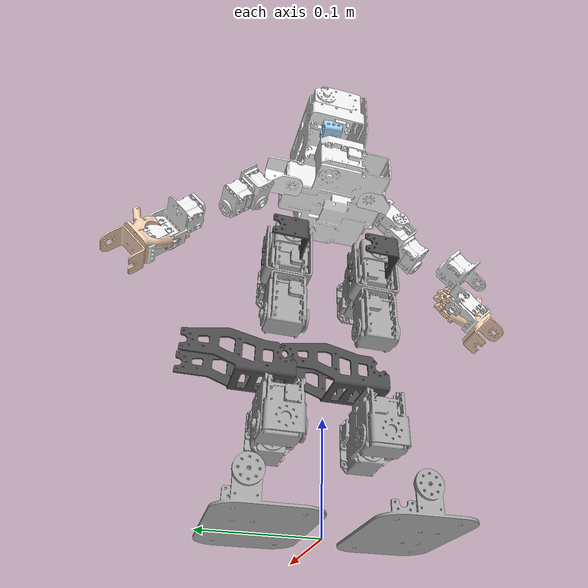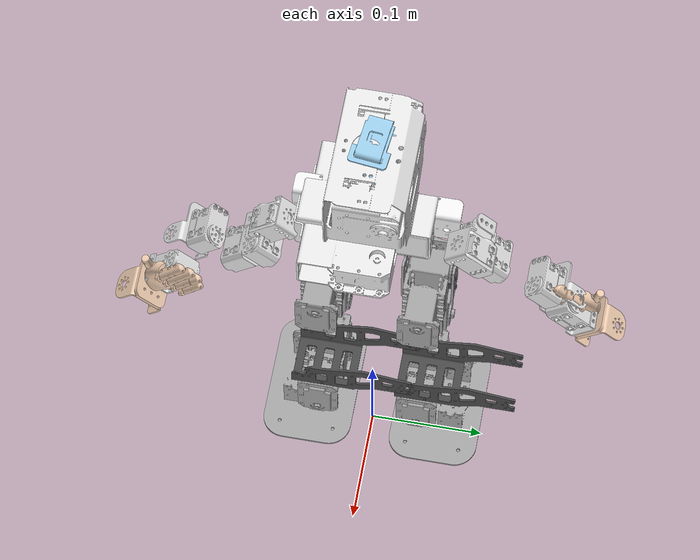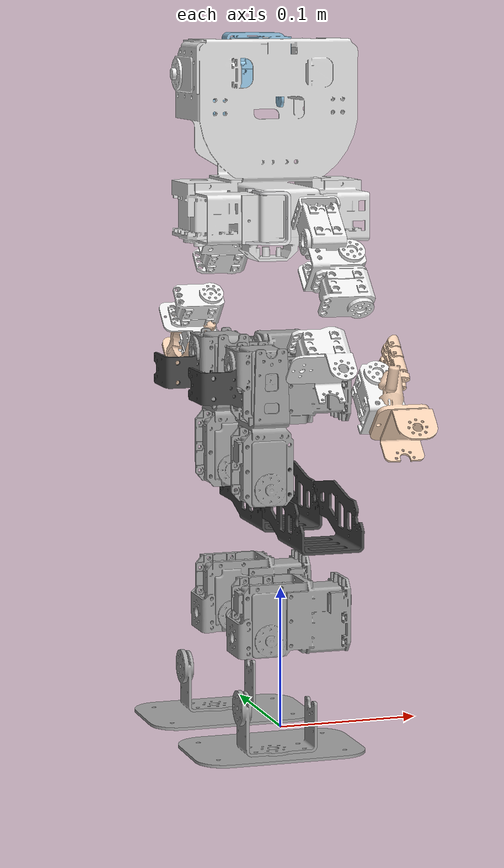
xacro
<?xml version="1.0"?>
<robot xmlns:xacro="http://www.ros.org/wiki/xacro" name="alfan_2025">
    <xacro:arg name="initial_positions_file" default="initial_positions.yaml" />

    <!-- Import alfan_2025 urdf file -->
    <xacro:include filename="$(find alfan_robot_description)/urdf/alfan.urdf" />

    <!-- Import control_xacro -->
    <xacro:include filename="alfan_2025.ros2_control.xacro" />

    <xacro:alfan_2025_ros2_control name="GazeboROS2" initial_positions_file="$(arg initial_positions_file)"/>

    <gazebo>
        <plugin filename="ign_ros2_control-system" name="ign_ros2_control::IgnitionROS2ControlPlugin">
            <parameters>$(find alfan_moveit_config)/config/ros2_controllers.yaml</parameters>
        </plugin>
    </gazebo>

</robot>

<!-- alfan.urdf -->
<!-- Generated using onshape-to-robot -->
<!-- Onshape https://cad.onshape.com/documents/8cbf7271d634c29c967e8abb/w/69ee037ca6e75b04c62f3a0c/e/52ef5a2e9e2916901e209032 -->
<robot name="alfan_2025">
  <!-- Dummy base link -->
  <link name="base_link"></link>

  <!-- Link body -->
  <link name="body">
    <inertial>
      <origin xyz="0.000411267 0.0353498 0.302557" rpy="0 0 0"/>
      <mass value="0.776"/>
      <inertia ixx="0.00203499" ixy="-1.25756e-06" ixz="9.38892e-06" iyy="0.00237683" iyz="0.000151309" izz="0.00128127"/>
    </inertial>
    <!-- Part body -->
    <collision>
      <origin xyz="-1.31293e-05 0.0322451 0.34124" rpy="5.10735e-16 2.03322e-15 5.27298e-13"/>
      <geometry>
        <box size="0.113618 0.0647698 0.097"/>
      </geometry>
    </collision>
    <collision>
      <origin xyz="2.31657e-05 0.0394829 0.270436" rpy="1.5708 1.07144e-09 -3.14159"/>
      <geometry>
        <box size="0.124589 0.0459933 0.113"/>
      </geometry>
    </collision>
    <visual>
      <origin xyz="3.47065e-06 0.0114153 0.38874" rpy="1.15071e-09 -1.07144e-09 5.27298e-13"/>
      <geometry>
        <mesh filename="file://$(find alfan_robot_description)/meshes/body.stl"/>
      </geometry>
      <material name="body_material">
        <color rgba="0.917647 0.917647 0.917647 1"/>
      </material>
    </visual>
  </link>
  <!-- Link hip_connector -->
  <link name="hip_connector">
    <inertial>
      <origin xyz="-0.00277951 3.46945e-18 0.00995004" rpy="0 0 0"/>
      <mass value="0.0123061"/>
      <inertia ixx="1.85406e-06" ixy="8.00236e-46" ixz="-3.24987e-09" iyy="6.40402e-06" iyz="3.03674e-49" izz="5.65319e-06"/>
    </inertial>
    <!-- Part hip_connector -->
    <collision>
      <origin xyz="-0.00275466 4.61869e-07 0.01715" rpy="-3.14159 1.70298e-32 3.14159"/>
      <geometry>
        <box size="0.0505652 0.0271414 0.0343"/>
      </geometry>
    </collision>
    <visual>
      <origin xyz="-0.0249111 0.0104111 0" rpy="-1.5708 -1.70298e-32 -1.75665e-40"/>
      <geometry>
        <mesh filename="file://$(find alfan_robot_description)/meshes/hip_connector.stl"/>
      </geometry>
      <material name="hip_connector_material">
        <color rgba="0.286275 0.286275 0.286275 1"/>
      </material>
    </visual>
  </link>
  <!-- Link r_hip_mx28_block -->
  <link name="r_hip_mx28_block">
    <inertial>
      <origin xyz="-1.37558e-05 -0.011279 0.00311794" rpy="0 0 0"/>
      <mass value="0.172"/>
      <inertia ixx="0.000124355" ixy="-3.24882e-07" ixz="4.71379e-08" iyy="0.000111307" iyz="-2.61935e-06" izz="4.76915e-05"/>
    </inertial>
    <!-- Part r_hip_mx28_block -->
    <collision>
      <origin xyz="0.00126368 -0.0135 0.00370412" rpy="-1.5708 1.57028 6.01977e-28"/>
      <geometry>
        <box size="0.086166 0.0433161 0.051"/>
      </geometry>
    </collision>
    <visual>
      <origin xyz="0.000712109 0.012 0.02305" rpy="-1.5708 1.57028 6.01977e-28"/>
      <geometry>
        <mesh filename="file://$(find alfan_robot_description)/meshes/r_hip_mx28_block.stl"/>
      </geometry>
      <material name="r_hip_mx28_block_material">
        <color rgba="0.647059 0.647059 0.647059 1"/>
      </material>
    </visual>
  </link>
  <!-- Link r_hip_to_knee -->
  <link name="r_hip_to_knee">
    <inertial>
      <origin xyz="1.98623e-05 -0.07614 -0.0205254" rpy="0 0 0"/>
      <mass value="0.1"/>
      <inertia ixx="5.82381e-05" ixy="-4.39709e-08" ixz="-4.88036e-11" iyy="2.07531e-05" iyz="3.32361e-07" izz="4.99882e-05"/>
    </inertial>
    <!-- Part r_hip_to_knee -->
    <collision>
      <origin xyz="7.98659e-06 -0.0518372 -0.0203764" rpy="1.5708 -0.000512983 6.25151e-12"/>
      <geometry>
        <box size="0.0357519 0.0454254 0.108"/>
      </geometry>
    </collision>
    <visual>
      <origin xyz="1.04083e-17 -0.0494982 -0.0205" rpy="-1.5708 -0.000512983 3.94431e-31"/>
      <geometry>
        <mesh filename="file://$(find alfan_robot_description)/meshes/r_hip_to_knee.stl"/>
      </geometry>
      <material name="r_hip_to_knee_material">
        <color rgba="0.647059 0.647059 0.647059 1"/>
      </material>
    </visual>
  </link>
  <!-- Link tibia -->
  <link name="tibia">
    <inertial>
      <origin xyz="0.0358486 -0.00695074 -0.0205" rpy="0 0 0"/>
      <mass value="0.0331521"/>
      <inertia ixx="1.77691e-05" ixy="-5.4342e-06" ixz="-1.7794e-11" iyy="3.96731e-05" iyz="-1.99428e-11" izz="3.15344e-05"/>
    </inertial>
    <!-- Part tibia -->
    <collision>
      <origin xyz="0.042763 -0.00188569 -0.0205" rpy="-3.95075e-22 7.29933e-24 -1.70683e-31"/>
      <geometry>
        <box size="0.105526 0.0398408 0.045"/>
      </geometry>
    </collision>
    <visual>
      <origin xyz="-0.01 -0.0217982 -0.0399111" rpy="-3.14159 -8.07435e-17 -1.70683e-31"/>
      <geometry>
        <mesh filename="file://$(find alfan_robot_description)/meshes/tibia.stl"/>
      </geometry>
      <material name="tibia_material">
        <color rgba="0.286275 0.286275 0.286275 1"/>
      </material>
    </visual>
  </link>
  <!-- Link r_ankle_mx28_block -->
  <link name="r_ankle_mx28_block">
    <inertial>
      <origin xyz="0.0202313 0.0113587 -0.0199638" rpy="0 0 0"/>
      <mass value="0.171"/>
      <inertia ixx="4.75178e-05" ixy="-2.04125e-06" ixz="-4.79159e-08" iyy="0.000109219" iyz="3.25089e-07" izz="0.000122128"/>
    </inertial>
    <!-- Part r_ankle_mx28_block -->
    <collision>
      <origin xyz="0.0203326 0.0135 -0.0186868" rpy="1.5708 -0.000512983 -2.95823e-31"/>
      <geometry>
        <box size="0.0840214 0.0432827 0.051"/>
      </geometry>
    </collision>
    <visual>
      <origin xyz="0 0.033 -0.01995" rpy="-1.5708 -0.000512983 -2.95823e-31"/>
      <geometry>
        <mesh filename="file://$(find alfan_robot_description)/meshes/r_ankle_mx28_block.stl"/>
      </geometry>
      <material name="r_ankle_mx28_block_material">
        <color rgba="0.647059 0.647059 0.647059 1"/>
      </material>
    </visual>
  </link>
  <!-- Link r_foot -->
  <link name="r_foot">
    <inertial>
      <origin xyz="-0.00958302 -0.028072 0.0273224" rpy="0 0 0"/>
      <mass value="0.068074"/>
      <inertia ixx="7.24657e-05" ixy="-3.0832e-06" ixz="-1.35193e-06" iyy="9.321e-05" iyz="-3.97153e-06" izz="3.59097e-05"/>
    </inertial>
    <!-- Part r_foot -->
    <collision>
      <origin xyz="1.08572e-05 -0.00989888 0.027" rpy="3.14159 -1.28014e-10 -1.69082e-13"/>
      <geometry>
        <box size="0.0272329 0.0438661 0.054"/>
      </geometry>
    </collision>
    <collision>
      <origin xyz="-0.0129381 -0.0327982 0.0252954" rpy="-1.5708 1.57028 1.063e-25"/>
      <geometry>
        <box size="0.120686 0.080481 0.01"/>
      </geometry>
    </collision>
    <visual>
      <origin xyz="-0.0130455 -0.0317982 0.02525" rpy="-1.5708 1.57028 1.063e-25"/>
      <geometry>
        <mesh filename="file://$(find alfan_robot_description)/meshes/r_foot.stl"/>
      </geometry>
      <material name="r_foot_material">
        <color rgba="0.647059 0.647059 0.647059 1"/>
      </material>
    </visual>
  </link>
  <!-- Joint from r_ankle_mx28_block to r_foot -->
  <joint name="r_ankle_roll" type="revolute">
    <origin xyz="0.02305 -2.60209e-15 -0.01995" rpy="-7.45549e-13 -1.5708 0"/>
    <parent link="r_ankle_mx28_block"/>
    <child link="r_foot"/>
    <axis xyz="0 0 1"/>
    <limit effort="2.5" velocity="10.0" lower="-0.3491" upper="0.3491"/>
  </joint>
  <!-- Joint from tibia to r_ankle_mx28_block -->
  <joint name="r_ankle_pitch" type="revolute">
    <origin xyz="0.093 0 1.38778e-17" rpy="-2.22045e-16 -6.13031e-17 1.5708"/>
    <parent link="tibia"/>
    <child link="r_ankle_mx28_block"/>
    <axis xyz="0 0 1"/>
    <limit effort="2.5" velocity="10.0" lower="-1.5708" upper="1.5708"/>
  </joint>
  <!-- Joint from r_hip_to_knee to tibia -->
  <joint name="r_knee" type="revolute">
    <origin xyz="2.70121e-13 -0.0938373 -0.000550036" rpy="2.24345e-20 2.22045e-16 -1.5708"/>
    <parent link="r_hip_to_knee"/>
    <child link="tibia"/>
    <axis xyz="0 0 1"/>
    <limit effort="2.5" velocity="10.0" lower="0.0" upper="3.14159"/>
  </joint>
  <!-- Joint from r_hip_mx28_block to r_hip_to_knee -->
  <joint name="r_hip_pitch" type="revolute">
    <origin xyz="0.01995 -4.28185e-13 0.02305" rpy="2.15155e-11 1.5708 0"/>
    <parent link="r_hip_mx28_block"/>
    <child link="r_hip_to_knee"/>
    <axis xyz="0 0 1"/>
    <limit effort="2.5" velocity="10.0" lower="-1.5707963268" upper="0.5235987756"/>
  </joint>
  <!-- Joint from hip_connector to r_hip_mx28_block -->
  <joint name="r_hip_roll" type="revolute">
    <origin xyz="-0.028 -2.77556e-17 0.0317982" rpy="-1.5708 3.58391e-14 -1.5708"/>
    <parent link="hip_connector"/>
    <child link="r_hip_mx28_block"/>
    <axis xyz="0 0 1"/>
    <limit effort="2.5" velocity="10.0" lower="-0.78538982" upper="0.78538982"/>
  </joint>
  <!-- Joint from body to hip_connector -->
  <joint name="r_hip_yaw" type="revolute">
    <origin xyz="-0.0444 0.0225 0.250434" rpy="3.14159 -2.83277e-16 -1.5708"/>
    <parent link="body"/>
    <child link="hip_connector"/>
    <axis xyz="0 0 1"/>
    <limit effort="2.5" velocity="10.0" lower="-0.43633" upper="0.43633"/>
  </joint>
  <!-- Link hip_connector_2 -->
  <link name="hip_connector_2">
    <inertial>
      <origin xyz="-0.00277951 1.04083e-17 0.00995004" rpy="0 0 0"/>
      <mass value="0.0123061"/>
      <inertia ixx="1.85406e-06" ixy="1.52861e-41" ixz="-3.24987e-09" iyy="6.40402e-06" iyz="3.5317e-39" izz="5.65319e-06"/>
    </inertial>
    <!-- Part hip_connector_2 -->
    <collision>
      <origin xyz="-0.00275466 4.6187e-07 0.01715" rpy="3.14159 2.19107e-41 3.14159"/>
      <geometry>
        <box size="0.0505652 0.0271414 0.0343"/>
      </geometry>
    </collision>
    <visual>
      <origin xyz="-0.0249111 0.0104111 0" rpy="-1.5708 -2.19107e-41 -1.36696e-41"/>
      <geometry>
        <mesh filename="file://$(find alfan_robot_description)/meshes/hip_connector.stl"/>
      </geometry>
      <material name="hip_connector_2_material">
        <color rgba="0.286275 0.286275 0.286275 1"/>
      </material>
    </visual>
  </link>
  <!-- Link l_hip_mx28_block -->
  <link name="l_hip_mx28_block">
    <inertial>
      <origin xyz="-0.000137008 -0.0113671 0.00296229" rpy="0 0 0"/>
      <mass value="0.172"/>
      <inertia ixx="0.000124536" ixy="6.17141e-07" ixz="4.64745e-07" iyy="0.000111096" iyz="-2.33547e-06" izz="4.73487e-05"/>
    </inertial>
    <!-- Part l_hip_mx28_block -->
    <collision>
      <origin xyz="-0.0017475 -0.0135 0.00373125" rpy="-1.5708 1.57028 -6.76328e-15"/>
      <geometry>
        <box size="0.0860053 0.0422632 0.051"/>
      </geometry>
    </collision>
    <visual>
      <origin xyz="-0.000712109 0.012 0.02305" rpy="-1.5708 1.57028 -3.12948e-24"/>
      <geometry>
        <mesh filename="file://$(find alfan_robot_description)/meshes/l_hip_mx28_block.stl"/>
      </geometry>
      <material name="l_hip_mx28_block_material">
        <color rgba="0.647059 0.647059 0.647059 1"/>
      </material>
    </visual>
  </link>
  <!-- Link l_hip_to_knee -->
  <link name="l_hip_to_knee">
    <inertial>
      <origin xyz="1.98601e-05 0.0761401 -0.0205254" rpy="0 0 0"/>
      <mass value="0.1"/>
      <inertia ixx="5.82381e-05" ixy="4.39729e-08" ixz="-5.17675e-11" iyy="2.07531e-05" iyz="-3.32378e-07" izz="4.99882e-05"/>
    </inertial>
    <!-- Part l_hip_to_knee -->
    <collision>
      <origin xyz="-7.71454e-06 0.0518372 -0.0203334" rpy="-1.5708 0.000512983 -1.48817e-11"/>
      <geometry>
        <box size="0.0357598 0.0454412 0.108"/>
      </geometry>
    </collision>
    <visual>
      <origin xyz="0 0.0494982 -0.0205" rpy="1.5708 0.000512983 2.35178e-27"/>
      <geometry>
        <mesh filename="file://$(find alfan_robot_description)/meshes/l_hip_to_knee.stl"/>
      </geometry>
      <material name="l_hip_to_knee_material">
        <color rgba="0.647059 0.647059 0.647059 1"/>
      </material>
    </visual>
  </link>
  <!-- Link tibia_2 -->
  <link name="tibia_2">
    <inertial>
      <origin xyz="0.0358486 0.00695074 -0.0205" rpy="0 0 0"/>
      <mass value="0.0331521"/>
      <inertia ixx="1.77691e-05" ixy="5.4342e-06" ixz="1.7794e-11" iyy="3.96731e-05" iyz="-1.99428e-11" izz="3.15344e-05"/>
    </inertial>
    <!-- Part tibia_2 -->
    <collision>
      <origin xyz="0.042763 0.00188569 -0.0205" rpy="3.14159 -1.89243e-16 -7.02585e-28"/>
      <geometry>
        <box size="0.105526 0.0398408 0.045"/>
      </geometry>
    </collision>
    <visual>
      <origin xyz="-0.01 0.0217982 -0.00108894" rpy="-2.22045e-16 -1.08499e-16 -7.0262e-28"/>
      <geometry>
        <mesh filename="file://$(find alfan_robot_description)/meshes/tibia.stl"/>
      </geometry>
      <material name="tibia_2_material">
        <color rgba="0.286275 0.286275 0.286275 1"/>
      </material>
    </visual>
  </link>
  <!-- Link l_ankle_mx28_block -->
  <link name="l_ankle_mx28_block">
    <inertial>
      <origin xyz="0.0202313 -0.0113587 -0.0199638" rpy="0 0 0"/>
      <mass value="0.171"/>
      <inertia ixx="4.75178e-05" ixy="2.04125e-06" ixz="-4.79048e-08" iyy="0.000109219" iyz="-3.25087e-07" izz="0.000122128"/>
    </inertial>
    <!-- Part l_ankle_mx28_block -->
    <collision>
      <origin xyz="0.0204374 -0.0135 -0.018697" rpy="-1.5708 0.000512983 3.46945e-18"/>
      <geometry>
        <box size="0.0841545 0.043397 0.051"/>
      </geometry>
    </collision>
    <visual>
      <origin xyz="-1.38778e-17 -0.033 -0.01995" rpy="1.5708 0.000512983 -7.66773e-28"/>
      <geometry>
        <mesh filename="file://$(find alfan_robot_description)/meshes/l_ankle_mx28_block.stl"/>
      </geometry>
      <material name="l_ankle_mx28_block_material">
        <color rgba="0.647059 0.647059 0.647059 1"/>
      </material>
    </visual>
  </link>
  <!-- Link l_foot -->
  <link name="l_foot">
    <inertial>
      <origin xyz="0.00958302 -0.028072 0.0273224" rpy="0 0 0"/>
      <mass value="0.068074"/>
      <inertia ixx="7.24657e-05" ixy="3.0832e-06" ixz="1.35193e-06" iyy="9.321e-05" iyz="-3.97153e-06" izz="3.59097e-05"/>
    </inertial>
    <!-- Part l_foot -->
    <collision>
      <origin xyz="0.0130001 -0.0327982 0.0252388" rpy="-1.5708 1.57028 1.91073e-24"/>
      <geometry>
        <box size="0.119957 0.0800615 0.01"/>
      </geometry>
    </collision>
    <collision>
      <origin xyz="-7.28813e-06 -0.00984316 0.027" rpy="-3.14159 1.28908e-10 -3.14159"/>
      <geometry>
        <box size="0.0271116 0.0438503 0.054"/>
      </geometry>
    </collision>
    <visual>
      <origin xyz="0.0130455 -0.0317982 0.02525" rpy="-1.5708 1.57028 1.91073e-24"/>
      <geometry>
        <mesh filename="file://$(find alfan_robot_description)/meshes/l_foot.stl"/>
      </geometry>
      <material name="l_foot_material">
        <color rgba="0.647059 0.647059 0.647059 1"/>
      </material>
    </visual>
  </link>

  <!-- Dummy joint -->
  <joint name="base_to_body" type="fixed">
    <parent link="base_link"/>
    <child link="body"/>
    <origin xyz="0 0 0" rpy="0 0 1.5708"/>
  </joint>

  <!-- Joint from l_ankle_mx28_block to l_foot -->
  <joint name="l_ankle_roll" type="revolute">
    <origin xyz="0.02305 -3.39034e-14 -0.01995" rpy="-3.14159 1.5708 0"/>
    <parent link="l_ankle_mx28_block"/>
    <child link="l_foot"/>
    <axis xyz="0 0 1"/>
    <limit effort="2.5" velocity="10.0" lower="-0.3491" upper="0.3491"/>
  </joint>
  <!-- Joint from tibia_2 to l_ankle_mx28_block -->
  <joint name="l_ankle_pitch" type="revolute">
    <origin xyz="0.093 3.46945e-18 -3.46945e-18" rpy="1.53445e-24 -6.12517e-17 -1.5708"/>
    <parent link="tibia_2"/>
    <child link="l_ankle_mx28_block"/>
    <axis xyz="0 0 1"/>
    <limit effort="2.5" velocity="10.0" lower="-1.5708" upper="1.5708"/>
  </joint>
  <!-- Joint from l_hip_to_knee to tibia_2 -->
  <joint name="l_knee" type="revolute">
    <origin xyz="6.32584e-13 0.0938373 -0.000550036" rpy="7.6929e-14 1.35379e-14 1.5708"/>
    <parent link="l_hip_to_knee"/>
    <child link="tibia_2"/>
    <axis xyz="0 0 1"/>
    <limit effort="2.5" velocity="10.0" lower="-3.14159" upper="0.0"/>
  </joint>
  <!-- Joint from l_hip_mx28_block to l_hip_to_knee -->
  <joint name="l_hip_pitch" type="revolute">
    <origin xyz="-0.01995 -3.19242e-10 0.02305" rpy="3.14159 1.5708 0"/>
    <parent link="l_hip_mx28_block"/>
    <child link="l_hip_to_knee"/>
    <axis xyz="0 0 1"/>
    <limit effort="2.5" velocity="10.0" lower="-0.5235987756" upper="1.5707963268"/>
  </joint>
  <!-- Joint from hip_connector_2 to l_hip_mx28_block -->
  <joint name="l_hip_roll" type="revolute">
    <origin xyz="-0.028 1.52656e-16 0.0317982" rpy="-1.5708 -2.9301e-15 -1.5708"/>
    <parent link="hip_connector_2"/>
    <child link="l_hip_mx28_block"/>
    <axis xyz="0 0 1"/>
    <limit effort="2.5" velocity="10.0" lower="-0.78538982" upper="0.78538982"/>
  </joint>
  <!-- Joint from body to hip_connector_2 -->
  <joint name="l_hip_yaw" type="revolute">
    <origin xyz="0.0444 0.0225 0.250434" rpy="3.14159 2.23241e-25 -1.5708"/>
    <parent link="body"/>
    <child link="hip_connector_2"/>
    <axis xyz="0 0 1"/>
    <limit effort="2.5" velocity="10.0" lower="-0.43633" upper="0.43633"/>
  </joint>
  <!-- Link r_shoulder_connector -->
  <link name="r_shoulder_connector">
    <inertial>
      <origin xyz="0.00492402 0.00182592 0.00882478" rpy="0 0 0"/>
      <mass value="0.0111142"/>
      <inertia ixx="3.10963e-06" ixy="-1.67756e-07" ixz="-2.99732e-07" iyy="1.7787e-06" iyz="-2.9848e-07" izz="3.55567e-06"/>
    </inertial>
    <!-- Part r_shoulder_connector -->
    <collision>
      <origin xyz="0.00800655 -5.95e-06 0.0145" rpy="3.14159 -6.43441e-29 2.99178e-21"/>
      <geometry>
        <box size="0.0381521 0.0360597 0.029"/>
      </geometry>
    </collision>
    <visual>
      <origin xyz="-5.55112e-17 0 6.93889e-18" rpy="-2.06574e-23 -6.43441e-29 2.99178e-21"/>
      <geometry>
        <mesh filename="file://$(find alfan_robot_description)/meshes/r_shoulder_connector.stl"/>
      </geometry>
      <material name="r_shoulder_connector_material">
        <color rgba="0.956863 0.956863 0.964706 1"/>
      </material>
    </visual>
  </link>
  <!-- Link r_arm_pitch -->
  <link name="r_arm_pitch">
    <inertial>
      <origin xyz="-1.44794e-09 -0.00829041 -0.0145388" rpy="0 0 0"/>
      <mass value="0.021"/>
      <inertia ixx="3.33337e-06" ixy="3.23662e-13" ixz="2.11157e-13" iyy="1.97043e-06" iyz="-6.60017e-08" izz="2.9586e-06"/>
    </inertial>
    <!-- Part r_arm_pitch -->
    <collision>
      <origin xyz="3.745e-05 -0.00999997 -0.0142303" rpy="1.5708 -1.5708 0"/>
      <geometry>
        <box size="0.0286122 0.0241427 0.038"/>
      </geometry>
    </collision>
    <visual>
      <origin xyz="-0.0105 -0.00796647 -0.0139285" rpy="1.5708 1.5699 -1.5708"/>
      <geometry>
        <mesh filename="file://$(find alfan_robot_description)/meshes/r_arm_pitch.stl"/>
      </geometry>
      <material name="r_arm_pitch_material">
        <color rgba="0.917647 0.917647 0.917647 1"/>
      </material>
    </visual>
  </link>
  <!-- Link r_elbow_block -->
  <link name="r_elbow_block">
    <inertial>
      <origin xyz="0.000187913 -0.00729419 -0.0276562" rpy="0 0 0"/>
      <mass value="0.041"/>
      <inertia ixx="1.17514e-05" ixy="1.55398e-08" ixz="9.53464e-08" iyy="1.01417e-05" iyz="-1.83184e-07" izz="5.62471e-06"/>
    </inertial>
    <!-- Part r_elbow_block -->
    <collision>
      <origin xyz="0.00117209 -0.0105 -0.0259947" rpy="-1.5708 0.000892489 -6.93942e-18"/>
      <geometry>
        <box size="0.0311226 0.0520685 0.039"/>
      </geometry>
    </collision>
    <visual>
      <origin xyz="0 0.009 -0.015" rpy="-1.5708 0.000892489 -5.30537e-22"/>
      <geometry>
        <mesh filename="file://$(find alfan_robot_description)/meshes/r_elbow_block.stl"/>
      </geometry>
      <material name="r_elbow_block_material">
        <color rgba="0.917647 0.917647 0.917647 1"/>
      </material>
    </visual>
  </link>
  <!-- Link r_wrist_roll -->
  <link name="r_wrist_roll">
    <inertial>
      <origin xyz="0.0244511 0.00421899 -0.0153151" rpy="0 0 0"/>
      <mass value="0.024"/>
      <inertia ixx="3.25385e-06" ixy="1.33849e-07" ixz="8.98504e-08" iyy="3.02331e-06" iyz="1.36622e-08" izz="3.92934e-06"/>
    </inertial>
    <!-- Part r_wrist_roll -->
    <collision>
      <origin xyz="0.015961 0.009 -0.015471" rpy="1.5708 1.5697 1.26491e-14"/>
      <geometry>
        <box size="0.0341979 0.050073 0.042"/>
      </geometry>
    </collision>
    <visual>
      <origin xyz="0.026 -0.012 -0.01545" rpy="1.5708 1.5697 4.67477e-19"/>
      <geometry>
        <mesh filename="file://$(find alfan_robot_description)/meshes/r_wrist_roll.stl"/>
      </geometry>
      <material name="r_wrist_roll_material">
        <color rgba="0.917647 0.917647 0.917647 1"/>
      </material>
    </visual>
  </link>
  <!-- Link r_wrist_pitch -->
  <link name="r_wrist_pitch">
    <inertial>
      <origin xyz="-0.000562986 1.18408e-09 0.0208877" rpy="0 0 0"/>
      <mass value="0.021"/>
      <inertia ixx="2.94329e-06" ixy="2.33635e-13" ixz="3.69312e-08" iyy="3.38578e-06" iyz="-3.52795e-13" izz="2.02185e-06"/>
    </inertial>
    <!-- Part r_wrist_pitch -->
    <collision>
      <origin xyz="0.0002212 -1.185e-05 0.019" rpy="3.14159 5.42031e-09 2.90242e-22"/>
      <geometry>
        <box size="0.0313399 0.0243173 0.038"/>
      </geometry>
    </collision>
    <visual>
      <origin xyz="-0.00157155 -0.0105 0.0210335" rpy="1.5708 -0.00109551 3.18065e-22"/>
      <geometry>
        <mesh filename="file://$(find alfan_robot_description)/meshes/r_wrist_pitch.stl"/>
      </geometry>
      <material name="r_wrist_pitch_material">
        <color rgba="0.917647 0.917647 0.917647 1"/>
      </material>
    </visual>
  </link>
  <!-- Link r_palm -->
  <link name="r_palm">
    <inertial>
      <origin xyz="0.0324738 0.00342859 -0.0134642" rpy="0 0 0"/>
      <mass value="0.027"/>
      <inertia ixx="4.5206e-06" ixy="6.58745e-07" ixz="-2.42819e-07" iyy="1.18175e-05" iyz="-1.67967e-07" izz="9.92762e-06"/>
    </inertial>
    <!-- Part r_palm -->
    <collision>
      <origin xyz="0.034 0.00362248 -0.0156296" rpy="-1.97381e-13 -1.5708 0"/>
      <geometry>
        <box size="0.0370488 0.0352658 0.086"/>
      </geometry>
    </collision>
    <visual>
      <origin xyz="0.014247 -0.0135 -0.01545" rpy="1.5708 1.56976 -1.88016e-19"/>
      <geometry>
        <mesh filename="file://$(find alfan_robot_description)/meshes/r_palm.stl"/>
      </geometry>
      <material name="r_palm_material">
        <color rgba="0.952941 0.815686 0.705882 1"/>
      </material>
    </visual>
  </link>
  <!-- Joint from r_wrist_pitch to r_palm -->
  <joint name="r_hand_26" type="revolute">
    <origin xyz="-0.0154 1.05818e-15 0.029" rpy="1.5708 -1.57079 -1.5708"/>
    <parent link="r_wrist_pitch"/>
    <child link="r_palm"/>
    <axis xyz="0 0 1"/>
    <limit effort="2.5" velocity="10.0" lower="-1.74532" upper="1.74534"/>
  </joint>
  <!-- Joint from r_wrist_roll to r_wrist_pitch -->
  <joint name="r_hand_25" type="revolute">
    <origin xyz="0.041 -0.003 -0.01545" rpy="-5.86012e-22 1.5708 0"/>
    <parent link="r_wrist_roll"/>
    <child link="r_wrist_pitch"/>
    <axis xyz="0 0 1"/>
    <limit effort="2.5" velocity="10.0" lower="-3.40339" upper="1.8326"/>
  </joint>
  <!-- Joint from r_elbow_block to r_wrist_roll -->
  <joint name="r_hand_24" type="revolute">
    <origin xyz="-0.0144 7.71258e-15 -0.04" rpy="-1.5708 1.57079 1.5708"/>
    <parent link="r_elbow_block"/>
    <child link="r_wrist_roll"/>
    <axis xyz="0 0 1"/>
    <limit effort="2.5" velocity="10.0" lower="-1.74533" upper="4.19964e-06"/>
  </joint>
  <!-- Joint from r_arm_pitch to r_elbow_block -->
  <joint name="r_hand_23" type="revolute">
    <origin xyz="3.38618e-15 -0.029 -0.0145" rpy="1.5708 8.47445e-06 -3.14159"/>
    <parent link="r_arm_pitch"/>
    <child link="r_elbow_block"/>
    <axis xyz="0 0 1"/>
    <limit effort="2.5" velocity="10.0" lower="-2.09439" upper="3.1416"/>
  </joint>
  <!-- Joint from r_shoulder_connector to r_arm_pitch -->
  <joint name="r_hand_22" type="revolute">
    <origin xyz="0.016 0.01595 0.018" rpy="-1.5708 0.776672 -9.454e-15"/>
    <parent link="r_shoulder_connector"/>
    <child link="r_arm_pitch"/>
    <axis xyz="0 0 1"/>
    <limit effort="2.5" velocity="10.0" lower="-3.40339" upper="1.8326"/>
  </joint>
  <!-- Joint from body to r_shoulder_connector -->
  <joint name="r_hand_21" type="revolute">
    <origin xyz="-0.058987 0.0152644 0.365421" rpy="-1.5708 1.57078 1.5708"/>
    <parent link="body"/>
    <child link="r_shoulder_connector"/>
    <axis xyz="0 0 1"/>
    <limit effort="2.5" velocity="10.0" lower="-1.57078" upper="3.49067"/>
  </joint>
  <!-- Link l_shoulder_connector -->
  <link name="l_shoulder_connector">
    <inertial>
      <origin xyz="0.00492402 -0.00182592 0.00882478" rpy="0 0 0"/>
      <mass value="0.0111142"/>
      <inertia ixx="3.10963e-06" ixy="1.67756e-07" ixz="-2.99732e-07" iyy="1.7787e-06" iyz="2.9848e-07" izz="3.55567e-06"/>
    </inertial>
    <!-- Part l_shoulder_connector -->
    <collision>
      <origin xyz="0.0079919 4.7e-06 0.0145" rpy="3.14159 1.25349e-31 -7.52838e-26"/>
      <geometry>
        <box size="0.038113 0.0359998 0.029"/>
      </geometry>
    </collision>
    <visual>
      <origin xyz="0 0 -6.93889e-18" rpy="-3.906e-24 1.25349e-31 -7.52838e-26"/>
      <geometry>
        <mesh filename="file://$(find alfan_robot_description)/meshes/l_shoulder_connector.stl"/>
      </geometry>
      <material name="l_shoulder_connector_material">
        <color rgba="0.956863 0.956863 0.964706 1"/>
      </material>
    </visual>
  </link>
  <!-- Link l_arm_pitch -->
  <link name="l_arm_pitch">
    <inertial>
      <origin xyz="0.00829041 -1.88353e-10 -0.0145388" rpy="0 0 0"/>
      <mass value="0.021"/>
      <inertia ixx="1.97043e-06" ixy="-4.58544e-14" ixz="6.60027e-08" iyy="3.33337e-06" iyz="2.91579e-14" izz="2.95861e-06"/>
    </inertial>
    <!-- Part l_arm_pitch -->
    <collision>
      <origin xyz="0.00999999 1.74e-06 -0.014211" rpy="3.14159 -1.5708 0"/>
      <geometry>
        <box size="0.0286099 0.0240448 0.038"/>
      </geometry>
    </collision>
    <visual>
      <origin xyz="0.00796647 0.0105 -0.0139285" rpy="-1.5708 1.56923 -9.73603e-17"/>
      <geometry>
        <mesh filename="file://$(find alfan_robot_description)/meshes/l_arm_pitch.stl"/>
      </geometry>
      <material name="l_arm_pitch_material">
        <color rgba="0.917647 0.917647 0.917647 1"/>
      </material>
    </visual>
  </link>
  <!-- Link l_elbow_block -->
  <link name="l_elbow_block">
    <inertial>
      <origin xyz="0.000187914 0.00729419 -0.0276562" rpy="0 0 0"/>
      <mass value="0.041"/>
      <inertia ixx="1.17514e-05" ixy="-1.55395e-08" ixz="9.53461e-08" iyy="1.01417e-05" iyz="1.83183e-07" izz="5.62471e-06"/>
    </inertial>
    <!-- Part l_elbow_block -->
    <collision>
      <origin xyz="0.00109686 0.0105 -0.0260383" rpy="1.5708 0.00156672 3.28675e-13"/>
      <geometry>
        <box size="0.0312457 0.0521967 0.039"/>
      </geometry>
    </collision>
    <visual>
      <origin xyz="5.55112e-17 -0.009 -0.015" rpy="1.5708 0.00156672 5.69396e-24"/>
      <geometry>
        <mesh filename="file://$(find alfan_robot_description)/meshes/l_elbow_block.stl"/>
      </geometry>
      <material name="l_elbow_block_material">
        <color rgba="0.917647 0.917647 0.917647 1"/>
      </material>
    </visual>
  </link>
  <!-- Link l_wrist_roll -->
  <link name="l_wrist_roll">
    <inertial>
      <origin xyz="0.0221358 0.00422592 0.0168149" rpy="0 0 0"/>
      <mass value="0.024"/>
      <inertia ixx="3.25467e-06" ixy="1.31122e-07" ixz="-8.98834e-08" iyy="3.01902e-06" iyz="-1.36984e-08" izz="3.92472e-06"/>
    </inertial>
    <!-- Part l_wrist_roll -->
    <collision>
      <origin xyz="0.0136709 0.00899997 0.016925" rpy="1.5708 -1.56902 -3.08139e-13"/>
      <geometry>
        <box size="0.0340405 0.0500191 0.042"/>
      </geometry>
    </collision>
    <visual>
      <origin xyz="0.0237011 -0.012 0.01695" rpy="1.5708 -1.56902 -3.04222e-13"/>
      <geometry>
        <mesh filename="file://$(find alfan_robot_description)/meshes/l_wrist_roll.stl"/>
      </geometry>
      <material name="l_wrist_roll_material">
        <color rgba="0.917647 0.917647 0.917647 1"/>
      </material>
    </visual>
  </link>
  <!-- Link l_wrist_pitch -->
  <link name="l_wrist_pitch">
    <inertial>
      <origin xyz="-0.000562985 1.95779e-10 0.0208877" rpy="0 0 0"/>
      <mass value="0.021"/>
      <inertia ixx="2.94329e-06" ixy="3.78283e-14" ixz="3.69321e-08" iyy="3.38578e-06" iyz="-3.71173e-14" izz="2.02185e-06"/>
    </inertial>
    <!-- Part l_wrist_pitch -->
    <collision>
      <origin xyz="0.0001983 -1.943e-05 0.019" rpy="-3.14159 4.71272e-09 1.78219e-23"/>
      <geometry>
        <box size="0.0313319 0.0241859 0.038"/>
      </geometry>
    </collision>
    <visual>
      <origin xyz="-0.00157155 0.0105 0.0210335" rpy="-1.5708 -0.00176881 -5.42858e-24"/>
      <geometry>
        <mesh filename="file://$(find alfan_robot_description)/meshes/l_wrist_pitch.stl"/>
      </geometry>
      <material name="l_wrist_pitch_material">
        <color rgba="0.917647 0.917647 0.917647 1"/>
      </material>
    </visual>
  </link>
  <!-- Link l_palm -->
  <link name="l_palm">
    <inertial>
      <origin xyz="0.0327282 -0.00344876 -0.0133785" rpy="0 0 0"/>
      <mass value="0.027"/>
      <inertia ixx="4.50317e-06" ixy="-6.89044e-07" ixz="-3.31517e-07" iyy="1.2318e-05" iyz="1.52921e-07" izz="1.04346e-05"/>
    </inertial>
    <!-- Part l_palm -->
    <collision>
      <origin xyz="0.034 -0.00364419 -0.0153821" rpy="3.14159 1.5708 0"/>
      <geometry>
        <box size="0.0373386 0.0354738 0.086"/>
      </geometry>
    </collision>
    <visual>
      <origin xyz="0.014247 0.0135 -0.01545" rpy="-1.5708 1.56909 4.24055e-21"/>
      <geometry>
        <mesh filename="file://$(find alfan_robot_description)/meshes/l_palm.stl"/>
      </geometry>
      <material name="l_palm_material">
        <color rgba="0.952941 0.815686 0.705882 1"/>
      </material>
    </visual>
  </link>
  <!-- Joint from l_wrist_pitch to l_palm -->
  <joint name="l_hand_36" type="revolute">
    <origin xyz="-0.0154 -9.61037e-16 0.029" rpy="1.13408e-16 -1.5708 0"/>
    <parent link="l_wrist_pitch"/>
    <child link="l_palm"/>
    <axis xyz="0 0 1"/>
    <limit effort="2.5" velocity="10.0" lower="-1.74533" upper="1.74533"/>
  </joint>
  <!-- Joint from l_wrist_roll to l_wrist_pitch -->
  <joint name="l_hand_35" type="revolute">
    <origin xyz="0.0386011 -0.00300003 0.01695" rpy="3.14159 -1.5708 0"/>
    <parent link="l_wrist_roll"/>
    <child link="l_wrist_pitch"/>
    <axis xyz="0 0 1"/>
    <limit effort="2.5" velocity="10.0" lower="-1.8326" upper="3.40339"/>
  </joint>
  <!-- Joint from l_elbow_block to l_wrist_roll -->
  <joint name="l_hand_34" type="revolute">
    <origin xyz="-0.0144 -7.69003e-15 -0.04" rpy="-3.28224e-13 1.5708 0"/>
    <parent link="l_elbow_block"/>
    <child link="l_wrist_roll"/>
    <axis xyz="0 0 1"/>
    <limit effort="2.5" velocity="10.0" lower="0" upper="1.74533"/>
  </joint>
  <!-- Joint from l_arm_pitch to l_elbow_block -->
  <joint name="l_hand_33" type="revolute">
    <origin xyz="0.029 -4.38538e-15 -0.0145" rpy="-1.5708 -3.77924e-13 1.5708"/>
    <parent link="l_arm_pitch"/>
    <child link="l_elbow_block"/>
    <axis xyz="0 0 1"/>
    <limit effort="2.5" velocity="10.0" lower="-3.14159" upper="2.0944"/>
  </joint>
  <!-- Joint from l_shoulder_connector to l_arm_pitch -->
  <joint name="l_hand_32" type="revolute">
    <origin xyz="0.016 -0.01595 0.018" rpy="1.5708 -0.776672 -2.06163e-16"/>
    <parent link="l_shoulder_connector"/>
    <child link="l_arm_pitch"/>
    <axis xyz="0 0 1"/>
    <limit effort="2.5" velocity="10.0" lower="-1.8326" upper="3.40339"/>
  </joint>
  <!-- Joint from body to l_shoulder_connector -->
  <joint name="l_hand_31" type="revolute">
    <origin xyz="0.0589788 0.0152645 0.365421" rpy="-1.87514e-07 1.5708 0"/>
    <parent link="body"/>
    <child link="l_shoulder_connector"/>
    <axis xyz="0 0 1"/>
    <limit effort="2.5" velocity="10.0" lower="-3.49066" upper="1.5708"/>
  </joint>
  <!-- Link neck -->
  <link name="neck">
    <inertial>
      <origin xyz="0.000726822 1.05378e-09 0.0226572" rpy="0 0 0"/>
      <mass value="0.025"/>
      <inertia ixx="3.57611e-06" ixy="1.96264e-13" ixz="-2.63437e-08" iyy="4.36092e-06" iyz="-4.85258e-13" izz="2.59214e-06"/>
    </inertial>
    <!-- Part neck -->
    <collision>
      <origin xyz="-0.000500027 8.07323e-07 0.0199465" rpy="1.5708 -3.38694e-15 1.5708"/>
      <geometry>
        <box size="0.0240336 0.039947 0.029"/>
      </geometry>
    </collision>
    <visual>
      <origin xyz="-6.93889e-18 -2.75794e-17 0.03992" rpy="3.35236e-15 4.63447e-16 -0.118375"/>
      <geometry>
        <mesh filename="file://$(find alfan_robot_description)/meshes/neck.stl"/>
      </geometry>
      <material name="neck_material">
        <color rgba="0.615686 0.811765 0.929412 1"/>
      </material>
    </visual>
  </link>
  <!-- Link head_to_face -->
  <link name="head_to_face">
    <inertial>
      <origin xyz="-0.000291133 0.02378 -0.0219855" rpy="0 0 0"/>
      <mass value="0.043"/>
      <inertia ixx="1.07245e-05" ixy="9.0142e-09" ixz="1.46286e-07" iyy="1.01572e-05" iyz="6.88999e-09" izz="6.16174e-06"/>
    </inertial>
    <!-- Part head_to_face -->
    <collision>
      <origin xyz="1.56115e-05 0.01326 -0.022" rpy="7.73175e-19 -2.79721e-07 -8.28365e-15"/>
      <geometry>
        <box size="0.032099 0.0505201 0.044"/>
      </geometry>
    </collision>
    <visual>
      <origin xyz="3.14066e-16 0.0385 -0.019955" rpy="-1.5708 1.45242 -7.11399e-18"/>
      <geometry>
        <mesh filename="file://$(find alfan_robot_description)/meshes/head_to_face.stl"/>
      </geometry>
      <material name="head_to_face_material">
        <color rgba="0.615686 0.811765 0.929412 1"/>
      </material>
    </visual>
  </link>
  <!-- Joint from neck to head_to_face -->
  <joint name="head_roll" type="revolute">
    <origin xyz="-0.015 -2.87625e-09 0.03092" rpy="1.5708 3.20936e-15 -1.5708"/>
    <parent link="neck"/>
    <child link="head_to_face"/>
    <axis xyz="0 0 1"/>
    <limit effort="2.5" velocity="10.0" lower="-3.141592653589793" upper="3.141592653589793"/>
  </joint>
  <!-- Joint from body to neck -->
  <joint name="head_yaw" type="revolute">
    <origin xyz="8.10306e-05 0.0362866 0.390889" rpy="1.9557e-09 -0.0104304 1.5708"/>
    <parent link="body"/>
    <child link="neck"/>
    <axis xyz="0 0 1"/>
    <limit effort="2.5" velocity="10.0" lower="-3.141592653589793" upper="3.141592653589793"/>
  </joint>

  <!-- 6 Axis IMU Sensor Link -->
  <link name="imu_link">
    <inertial>
      <mass value="0.001"/>
      <origin xyz="0 0 0" rpy="0 0 0"/>
      <inertia ixx="1e-09" ixy="0.0" ixz="0.0" iyy="1e-09" iyz="0.0" izz="1e-09"/>
    </inertial>
  </link>

  <joint name="imu_joint" type="fixed">
    <parent link="body"/>
    <child link="imu_link"/>
    <origin xyz="0.0 0.0 -0.0580833" rpy="0 0 1.5708"/>
  </joint>

  <gazebo reference="body">
    <sensor name="imu_sensor" type="imu">
      <pose>0.0 0.0 -0.0580833 0 0 1.5708</pose>
      <always_on>1</always_on>
      <update_rate>100</update_rate>
      <visualize>true</visualize>
      <topic>imu</topic>
    </sensor>
  </gazebo>

  <gazebo>
    <plugin filename="ignition-gazebo-imu-system" name="ignition::gazebo::systems::Imu"/>
  </gazebo>

  <gazebo reference="l_foot">
    <mu1>0.8</mu1>
    <mu2>0.8</mu2>
    <kp>100000.0</kp>
    <kd>100.0</kd>
    <minDepth>0.001</minDepth>
  </gazebo>
  <gazebo reference="r_foot">
    <mu1>0.8</mu1>
    <mu2>0.8</mu2>
    <kp>100000.0</kp>
    <kd>100.0</kd>
    <minDepth>0.001</minDepth>
  </gazebo>

  <gazebo reference="l_palm">
    <mu1>0.8</mu1>
    <mu2>0.8</mu2>
    <kp>100000.0</kp>
    <kd>100.0</kd>
    <minDepth>0.001</minDepth>
  </gazebo>
  <gazebo reference="r_palm">
    <mu1>0.8</mu1>
    <mu2>0.8</mu2>
    <kp>100000.0</kp>
    <kd>100.0</kd>
    <minDepth>0.001</minDepth>
  </gazebo>
</robot>
